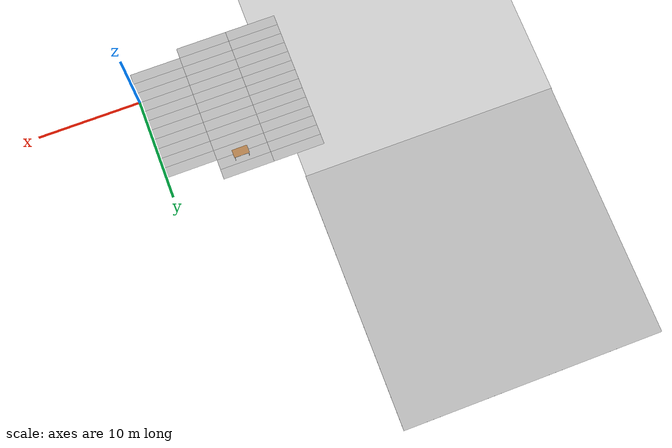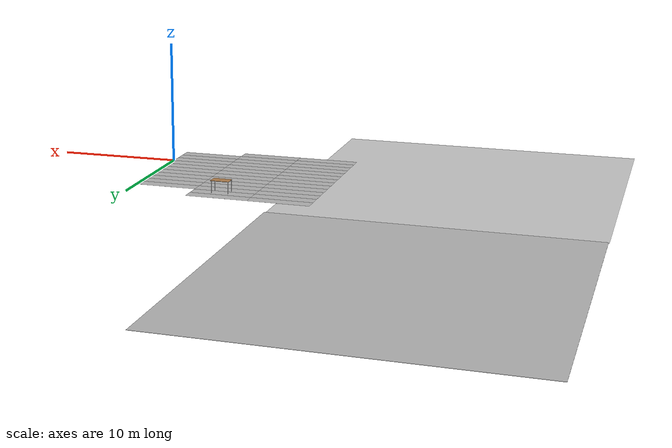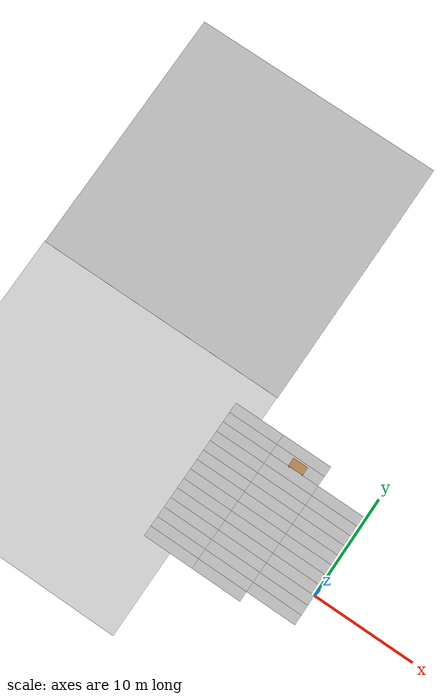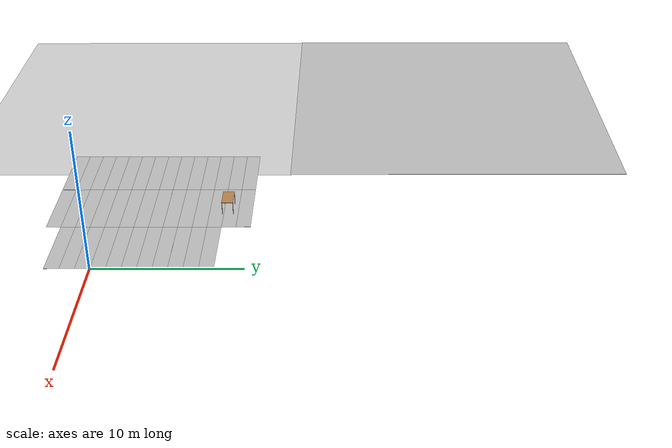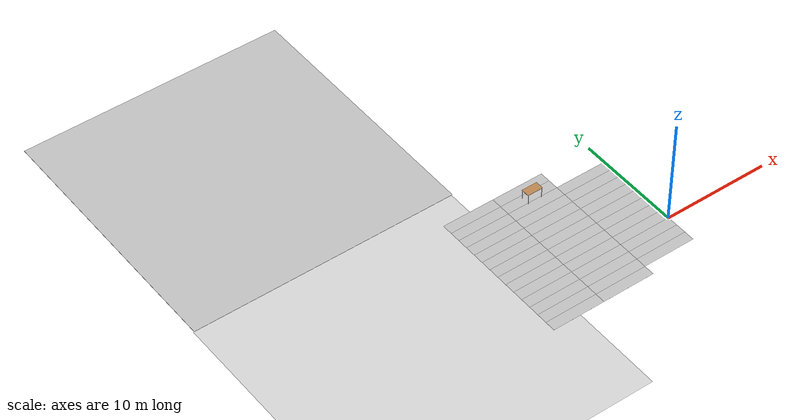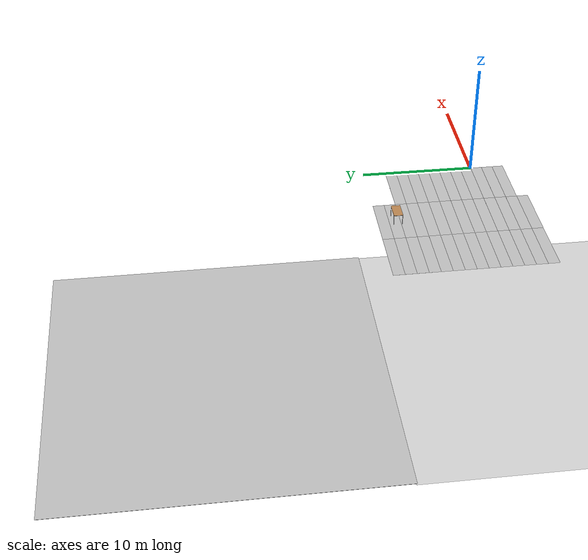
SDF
<sdf version="1.6">
 <world name="default">
  <model name="cmp9767m_ground_3_1">
   <static>1</static>
   <link name="dirt">
    <collision name="collision">
     <geometry><plane><normal>0 0 1</normal><size>25 25</size></plane></geometry>
     <surface><friction><ode><mu>100</mu><mu2>50</mu2></ode></friction></surface>
    </collision>
    <visual name="visual">
     <cast_shadows>0</cast_shadows>
     <geometry><plane><normal>0 0 1</normal><size>25 25</size></plane></geometry>
     <material>
      <script>
       <uri>model://cmp9767m_ground_3/materials/scripts</uri>
       <uri>model://cmp9767m_ground_3/materials/textures</uri>
       <name>cmp9767m_ground_3/dirt</name>
      </script>
     </material>
    </visual>
   </link>
   <pose>-24.7968 -0.006622 0 0 -0 0</pose>
  </model>
  <model name="cmp9767m_ground_3_2">
   <static>1</static>
   <link name="dirt">
    <collision name="collision">
     <geometry><plane><normal>0 0 1</normal><size>25 25</size></plane></geometry>
     <surface><friction><ode><mu>100</mu><mu2>50</mu2></ode></friction></surface>
    </collision>
    <visual name="visual">
     <cast_shadows>0</cast_shadows>
     <geometry><plane><normal>0 0 1</normal><size>25 25</size></plane></geometry>
     <material>
      <script>
       <uri>model://cmp9767m_ground_3/materials/scripts</uri>
       <uri>model://cmp9767m_ground_3/materials/textures</uri>
       <name>cmp9767m_ground_3/dirt</name>
      </script>
     </material>
    </visual>
   </link>
   <pose>-24.7414 24.922 0 0 -0 0</pose>
  </model>
  <model name="crop_rows">
   <static>1</static>
   <link name="crop_rows">
    <pose>0 0 0.025 0 -0 0</pose>
    <collision name="collision">
     <geometry><plane><normal>0 0 1</normal><size>5 1</size></plane></geometry>
     <surface><friction><ode><mu>100</mu><mu2>50</mu2></ode></friction></surface>
    </collision>
    <visual name="visual">
     <cast_shadows>0</cast_shadows>
     <geometry><plane><normal>0 0 1</normal><size>5 1</size></plane></geometry>
     <material>
      <script>
       <uri>model://crop_rows/materials/scripts</uri>
       <uri>model://crop_rows/materials/textures</uri>
       <name>crop_rows/real_texture</name>
      </script>
     </material>
    </visual>
   </link>
   <pose>-2.5 -0.5 0 0 -0 0</pose>
  </model>
  <model name="crop_rows_1">
   <static>1</static>
   <link name="crop_rows">
    <pose>0 0 0.025 0 -0 0</pose>
    <collision name="collision">
     <geometry><plane><normal>0 0 1</normal><size>5 1</size></plane></geometry>
     <surface><friction><ode><mu>100</mu><mu2>50</mu2></ode></friction></surface>
    </collision>
    <visual name="visual">
     <cast_shadows>0</cast_shadows>
     <geometry><plane><normal>0 0 1</normal><size>5 1</size></plane></geometry>
     <material>
      <script>
       <uri>model://crop_rows/materials/scripts</uri>
       <uri>model://crop_rows/materials/textures</uri>
       <name>crop_rows/real_texture</name>
      </script>
     </material>
    </visual>
   </link>
   <pose>-2.5 -1.5 0 0 -0 0</pose>
  </model>
  <model name="crop_rows_3">
   <static>1</static>
   <link name="crop_rows">
    <pose>0 0 0.025 0 -0 0</pose>
    <collision name="collision">
     <geometry><plane><normal>0 0 1</normal><size>5 1</size></plane></geometry>
     <surface><friction><ode><mu>100</mu><mu2>50</mu2></ode></friction></surface>
    </collision>
    <visual name="visual">
     <cast_shadows>0</cast_shadows>
     <geometry><plane><normal>0 0 1</normal><size>5 1</size></plane></geometry>
     <material>
      <script>
       <uri>model://crop_rows/materials/scripts</uri>
       <uri>model://crop_rows/materials/textures</uri>
       <name>crop_rows/real_texture</name>
      </script>
     </material>
    </visual>
   </link>
   <pose>-2.5 -2.5 0 0 -0 0</pose>
  </model>
  <model name="crop_rows_15">
   <static>1</static>
   <link name="crop_rows">
    <pose>0 0 0.025 0 -0 0</pose>
    <collision name="collision">
     <geometry><plane><normal>0 0 1</normal><size>5 1</size></plane></geometry>
     <surface><friction><ode><mu>100</mu><mu2>50</mu2></ode></friction></surface>
    </collision>
    <visual name="visual">
     <cast_shadows>0</cast_shadows>
     <geometry><plane><normal>0 0 1</normal><size>5 1</size></plane></geometry>
     <material>
      <script>
       <uri>model://crop_rows/materials/scripts</uri>
       <uri>model://crop_rows/materials/textures</uri>
       <name>crop_rows/real_texture</name>
      </script>
     </material>
    </visual>
   </link>
   <pose>-2.5 0.5 0 0 -0 0</pose>
  </model>
  <model name="crop_rows_16">
   <static>1</static>
   <link name="crop_rows">
    <pose>0 0 0.025 0 -0 0</pose>
    <collision name="collision">
     <geometry><plane><normal>0 0 1</normal><size>5 1</size></plane></geometry>
     <surface><friction><ode><mu>100</mu><mu2>50</mu2></ode></friction></surface>
    </collision>
    <visual name="visual">
     <cast_shadows>0</cast_shadows>
     <geometry><plane><normal>0 0 1</normal><size>5 1</size></plane></geometry>
     <material>
      <script>
       <uri>model://crop_rows/materials/scripts</uri>
       <uri>model://crop_rows/materials/textures</uri>
       <name>crop_rows/real_texture</name>
      </script>
     </material>
    </visual>
   </link>
   <pose>-2.5 1.5 0 0 -0 0</pose>
  </model>
  <model name="crop_rows_17">
   <static>1</static>
   <link name="crop_rows">
    <pose>0 0 0.025 0 -0 0</pose>
    <collision name="collision">
     <geometry><plane><normal>0 0 1</normal><size>5 1</size></plane></geometry>
     <surface><friction><ode><mu>100</mu><mu2>50</mu2></ode></friction></surface>
    </collision>
    <visual name="visual">
     <cast_shadows>0</cast_shadows>
     <geometry><plane><normal>0 0 1</normal><size>5 1</size></plane></geometry>
     <material>
      <script>
       <uri>model://crop_rows/materials/scripts</uri>
       <uri>model://crop_rows/materials/textures</uri>
       <name>crop_rows/real_texture</name>
      </script>
     </material>
    </visual>
   </link>
   <pose>-2.5 2.5 0 0 -0 0</pose>
  </model>
  <model name="crop_rows_18">
   <static>1</static>
   <link name="crop_rows">
    <pose>0 0 0.025 0 -0 0</pose>
    <collision name="collision">
     <geometry><plane><normal>0 0 1</normal><size>5 1</size></plane></geometry>
     <surface><friction><ode><mu>100</mu><mu2>50</mu2></ode></friction></surface>
    </collision>
    <visual name="visual">
     <cast_shadows>0</cast_shadows>
     <geometry><plane><normal>0 0 1</normal><size>5 1</size></plane></geometry>
     <material>
      <script>
       <uri>model://crop_rows/materials/scripts</uri>
       <uri>model://crop_rows/materials/textures</uri>
       <name>crop_rows/real_texture</name>
      </script>
     </material>
    </visual>
   </link>
   <pose>-2.5 3.5 0 0 -0 0</pose>
  </model>
  <model name="crop_rows_29">
   <static>1</static>
   <link name="crop_rows">
    <pose>0 0 0.025 0 -0 0</pose>
    <collision name="collision">
     <geometry><plane><normal>0 0 1</normal><size>5 1</size></plane></geometry>
     <surface><friction><ode><mu>100</mu><mu2>50</mu2></ode></friction></surface>
    </collision>
    <visual name="visual">
     <cast_shadows>0</cast_shadows>
     <geometry><plane><normal>0 0 1</normal><size>5 1</size></plane></geometry>
     <material>
      <script>
       <uri>model://crop_rows/materials/scripts</uri>
       <uri>model://crop_rows/materials/textures</uri>
       <name>crop_rows/real_texture</name>
      </script>
     </material>
    </visual>
   </link>
   <pose>-2.5 4.5 0 0 -0 0</pose>
  </model>
  <model name="crop_rows_32">
   <static>1</static>
   <link name="crop_rows">
    <pose>0 0 0.025 0 -0 0</pose>
    <collision name="collision">
     <geometry><plane><normal>0 0 1</normal><size>5 1</size></plane></geometry>
     <surface><friction><ode><mu>100</mu><mu2>50</mu2></ode></friction></surface>
    </collision>
    <visual name="visual">
     <cast_shadows>0</cast_shadows>
     <geometry><plane><normal>0 0 1</normal><size>5 1</size></plane></geometry>
     <material>
      <script>
       <uri>model://crop_rows/materials/scripts</uri>
       <uri>model://crop_rows/materials/textures</uri>
       <name>crop_rows/real_texture</name>
      </script>
     </material>
    </visual>
   </link>
   <pose>-2.5 5.5 0 0 -0 0</pose>
  </model>
  <model name="crop_rows_35">
   <static>1</static>
   <link name="crop_rows">
    <pose>0 0 0.025 0 -0 0</pose>
    <collision name="collision">
     <geometry><plane><normal>0 0 1</normal><size>5 1</size></plane></geometry>
     <surface><friction><ode><mu>100</mu><mu2>50</mu2></ode></friction></surface>
    </collision>
    <visual name="visual">
     <cast_shadows>0</cast_shadows>
     <geometry><plane><normal>0 0 1</normal><size>5 1</size></plane></geometry>
     <material>
      <script>
       <uri>model://crop_rows/materials/scripts</uri>
       <uri>model://crop_rows/materials/textures</uri>
       <name>crop_rows/real_texture</name>
      </script>
     </material>
    </visual>
   </link>
   <pose>-2.5 6.5 0 0 -0 0</pose>
  </model>
  <model name="crop_rows_41">
   <static>1</static>
   <link name="crop_rows">
    <pose>0 0 0.025 0 -0 0</pose>
    <collision name="collision">
     <geometry><plane><normal>0 0 1</normal><size>5 1</size></plane></geometry>
     <surface><friction><ode><mu>100</mu><mu2>50</mu2></ode></friction></surface>
    </collision>
    <visual name="visual">
     <cast_shadows>0</cast_shadows>
     <geometry><plane><normal>0 0 1</normal><size>5 1</size></plane></geometry>
     <material>
      <script>
       <uri>model://crop_rows/materials/scripts</uri>
       <uri>model://crop_rows/materials/textures</uri>
       <name>crop_rows/real_texture</name>
      </script>
     </material>
    </visual>
   </link>
   <pose>-2.5 7.5 0 0 -0 0</pose>
  </model>
  <model name="crop_rows_77">
   <static>1</static>
   <link name="crop_rows">
    <pose>0 0 0.025 0 -0 0</pose>
    <collision name="collision">
     <geometry><plane><normal>0 0 1</normal><size>5 1</size></plane></geometry>
     <surface><friction><ode><mu>100</mu><mu2>50</mu2></ode></friction></surface>
    </collision>
    <visual name="visual">
     <cast_shadows>0</cast_shadows>
     <geometry><plane><normal>0 0 1</normal><size>5 1</size></plane></geometry>
     <material>
      <script>
       <uri>model://crop_rows/materials/scripts</uri>
       <uri>model://crop_rows/materials/textures</uri>
       <name>crop_rows/real_texture</name>
      </script>
     </material>
    </visual>
   </link>
   <pose>-7.5 -3.5 0 0 -0 0</pose>
  </model>
  <model name="crop_rows_78">
   <static>1</static>
   <link name="crop_rows">
    <pose>0 0 0.025 0 -0 0</pose>
    <collision name="collision">
     <geometry><plane><normal>0 0 1</normal><size>5 1</size></plane></geometry>
     <surface><friction><ode><mu>100</mu><mu2>50</mu2></ode></friction></surface>
    </collision>
    <visual name="visual">
     <cast_shadows>0</cast_shadows>
     <geometry><plane><normal>0 0 1</normal><size>5 1</size></plane></geometry>
     <material>
      <script>
       <uri>model://crop_rows/materials/scripts</uri>
       <uri>model://crop_rows/materials/textures</uri>
       <name>crop_rows/real_texture</name>
      </script>
     </material>
    </visual>
   </link>
   <pose>-7.5 -2.5 0 0 -0 0</pose>
  </model>
  <model name="crop_rows_79">
   <static>1</static>
   <link name="crop_rows">
    <pose>0 0 0.025 0 -0 0</pose>
    <collision name="collision">
     <geometry><plane><normal>0 0 1</normal><size>5 1</size></plane></geometry>
     <surface><friction><ode><mu>100</mu><mu2>50</mu2></ode></friction></surface>
    </collision>
    <visual name="visual">
     <cast_shadows>0</cast_shadows>
     <geometry><plane><normal>0 0 1</normal><size>5 1</size></plane></geometry>
     <material>
      <script>
       <uri>model://crop_rows/materials/scripts</uri>
       <uri>model://crop_rows/materials/textures</uri>
       <name>crop_rows/real_texture</name>
      </script>
     </material>
    </visual>
   </link>
   <pose>-7.5 -1.5 0 0 -0 0</pose>
  </model>
  <model name="crop_rows_80">
   <static>1</static>
   <link name="crop_rows">
    <pose>0 0 0.025 0 -0 0</pose>
    <collision name="collision">
     <geometry><plane><normal>0 0 1</normal><size>5 1</size></plane></geometry>
     <surface><friction><ode><mu>100</mu><mu2>50</mu2></ode></friction></surface>
    </collision>
    <visual name="visual">
     <cast_shadows>0</cast_shadows>
     <geometry><plane><normal>0 0 1</normal><size>5 1</size></plane></geometry>
     <material>
      <script>
       <uri>model://crop_rows/materials/scripts</uri>
       <uri>model://crop_rows/materials/textures</uri>
       <name>crop_rows/real_texture</name>
      </script>
     </material>
    </visual>
   </link>
   <pose>-7.5 -0.5 0 0 -0 0</pose>
  </model>
  <model name="crop_rows_81">
   <static>1</static>
   <link name="crop_rows">
    <pose>0 0 0.025 0 -0 0</pose>
    <collision name="collision">
     <geometry><plane><normal>0 0 1</normal><size>5 1</size></plane></geometry>
     <surface><friction><ode><mu>100</mu><mu2>50</mu2></ode></friction></surface>
    </collision>
    <visual name="visual">
     <cast_shadows>0</cast_shadows>
     <geometry><plane><normal>0 0 1</normal><size>5 1</size></plane></geometry>
     <material>
      <script>
       <uri>model://crop_rows/materials/scripts</uri>
       <uri>model://crop_rows/materials/textures</uri>
       <name>crop_rows/real_texture</name>
      </script>
     </material>
    </visual>
   </link>
   <pose>-7.5 0.5 0 0 -0 0</pose>
  </model>
  <model name="crop_rows_82">
   <static>1</static>
   <link name="crop_rows">
    <pose>0 0 0.025 0 -0 0</pose>
    <collision name="collision">
     <geometry><plane><normal>0 0 1</normal><size>5 1</size></plane></geometry>
     <surface><friction><ode><mu>100</mu><mu2>50</mu2></ode></friction></surface>
    </collision>
    <visual name="visual">
     <cast_shadows>0</cast_shadows>
     <geometry><plane><normal>0 0 1</normal><size>5 1</size></plane></geometry>
     <material>
      <script>
       <uri>model://crop_rows/materials/scripts</uri>
       <uri>model://crop_rows/materials/textures</uri>
       <name>crop_rows/real_texture</name>
      </script>
     </material>
    </visual>
   </link>
   <pose>-7.5 1.5 0 0 -0 0</pose>
  </model>
  <model name="crop_rows_83">
   <static>1</static>
   <link name="crop_rows">
    <pose>0 0 0.025 0 -0 0</pose>
    <collision name="collision">
     <geometry><plane><normal>0 0 1</normal><size>5 1</size></plane></geometry>
     <surface><friction><ode><mu>100</mu><mu2>50</mu2></ode></friction></surface>
    </collision>
    <visual name="visual">
     <cast_shadows>0</cast_shadows>
     <geometry><plane><normal>0 0 1</normal><size>5 1</size></plane></geometry>
     <material>
      <script>
       <uri>model://crop_rows/materials/scripts</uri>
       <uri>model://crop_rows/materials/textures</uri>
       <name>crop_rows/real_texture</name>
      </script>
     </material>
    </visual>
   </link>
   <pose>-7.5 2.5 0 0 -0 0</pose>
  </model>
  <model name="crop_rows_84">
   <static>1</static>
   <link name="crop_rows">
    <pose>0 0 0.025 0 -0 0</pose>
    <collision name="collision">
     <geometry><plane><normal>0 0 1</normal><size>5 1</size></plane></geometry>
     <surface><friction><ode><mu>100</mu><mu2>50</mu2></ode></friction></surface>
    </collision>
    <visual name="visual">
     <cast_shadows>0</cast_shadows>
     <geometry><plane><normal>0 0 1</normal><size>5 1</size></plane></geometry>
     <material>
      <script>
       <uri>model://crop_rows/materials/scripts</uri>
       <uri>model://crop_rows/materials/textures</uri>
       <name>crop_rows/real_texture</name>
      </script>
     </material>
    </visual>
   </link>
   <pose>-7.5 3.5 0 0 -0 0</pose>
  </model>
  <model name="crop_rows_85">
   <static>1</static>
   <link name="crop_rows">
    <pose>0 0 0.025 0 -0 0</pose>
    <collision name="collision">
     <geometry><plane><normal>0 0 1</normal><size>5 1</size></plane></geometry>
     <surface><friction><ode><mu>100</mu><mu2>50</mu2></ode></friction></surface>
    </collision>
    <visual name="visual">
     <cast_shadows>0</cast_shadows>
     <geometry><plane><normal>0 0 1</normal><size>5 1</size></plane></geometry>
     <material>
      <script>
       <uri>model://crop_rows/materials/scripts</uri>
       <uri>model://crop_rows/materials/textures</uri>
       <name>crop_rows/real_texture</name>
      </script>
     </material>
    </visual>
   </link>
   <pose>-7.5 4.5 0 0 -0 0</pose>
  </model>
  <model name="crop_rows_86">
   <static>1</static>
   <link name="crop_rows">
    <pose>0 0 0.025 0 -0 0</pose>
    <collision name="collision">
     <geometry><plane><normal>0 0 1</normal><size>5 1</size></plane></geometry>
     <surface><friction><ode><mu>100</mu><mu2>50</mu2></ode></friction></surface>
    </collision>
    <visual name="visual">
     <cast_shadows>0</cast_shadows>
     <geometry><plane><normal>0 0 1</normal><size>5 1</size></plane></geometry>
     <material>
      <script>
       <uri>model://crop_rows/materials/scripts</uri>
       <uri>model://crop_rows/materials/textures</uri>
       <name>crop_rows/real_texture</name>
      </script>
     </material>
    </visual>
   </link>
   <pose>-7.5 5.5 0 0 -0 0</pose>
  </model>
  <model name="crop_rows_87">
   <static>1</static>
   <link name="crop_rows">
    <pose>0 0 0.025 0 -0 0</pose>
    <collision name="collision">
     <geometry><plane><normal>0 0 1</normal><size>5 1</size></plane></geometry>
     <surface><friction><ode><mu>100</mu><mu2>50</mu2></ode></friction></surface>
    </collision>
    <visual name="visual">
     <cast_shadows>0</cast_shadows>
     <geometry><plane><normal>0 0 1</normal><size>5 1</size></plane></geometry>
     <material>
      <script>
       <uri>model://crop_rows/materials/scripts</uri>
       <uri>model://crop_rows/materials/textures</uri>
       <name>crop_rows/real_texture</name>
      </script>
     </material>
    </visual>
   </link>
   <pose>-7.5 6.5 0 0 -0 0</pose>
  </model>
  <model name="crop_rows_88">
   <static>1</static>
   <link name="crop_rows">
    <pose>0 0 0.025 0 -0 0</pose>
    <collision name="collision">
     <geometry><plane><normal>0 0 1</normal><size>5 1</size></plane></geometry>
     <surface><friction><ode><mu>100</mu><mu2>50</mu2></ode></friction></surface>
    </collision>
    <visual name="visual">
     <cast_shadows>0</cast_shadows>
     <geometry><plane><normal>0 0 1</normal><size>5 1</size></plane></geometry>
     <material>
      <script>
       <uri>model://crop_rows/materials/scripts</uri>
       <uri>model://crop_rows/materials/textures</uri>
       <name>crop_rows/real_texture</name>
      </script>
     </material>
    </visual>
   </link>
   <pose>-7.5 7.5 0 0 -0 0</pose>
  </model>
  <model name="crop_rows_93">
   <static>1</static>
   <link name="crop_rows">
    <pose>0 0 0.025 0 -0 0</pose>
    <collision name="collision">
     <geometry><plane><normal>0 0 1</normal><size>5 1</size></plane></geometry>
     <surface><friction><ode><mu>100</mu><mu2>50</mu2></ode></friction></surface>
    </collision>
    <visual name="visual">
     <cast_shadows>0</cast_shadows>
     <geometry><plane><normal>0 0 1</normal><size>5 1</size></plane></geometry>
     <material>
      <script>
       <uri>model://crop_rows/materials/scripts</uri>
       <uri>model://crop_rows/materials/textures</uri>
       <name>crop_rows/real_texture</name>
      </script>
     </material>
    </visual>
   </link>
   <pose>-7.5 8.5 0 0 -0 0</pose>
  </model>
  <model name="crop_rows_94">
   <static>1</static>
   <link name="crop_rows">
    <pose>0 0 0.025 0 -0 0</pose>
    <collision name="collision">
     <geometry><plane><normal>0 0 1</normal><size>5 1</size></plane></geometry>
     <surface><friction><ode><mu>100</mu><mu2>50</mu2></ode></friction></surface>
    </collision>
    <visual name="visual">
     <cast_shadows>0</cast_shadows>
     <geometry><plane><normal>0 0 1</normal><size>5 1</size></plane></geometry>
     <material>
      <script>
       <uri>model://crop_rows/materials/scripts</uri>
       <uri>model://crop_rows/materials/textures</uri>
       <name>crop_rows/real_texture</name>
      </script>
     </material>
    </visual>
   </link>
   <pose>-7.5 9.5 0 0 -0 0</pose>
  </model>
  <model name="crop_rows_99">
   <static>1</static>
   <link name="crop_rows">
    <pose>0 0 0.025 0 -0 0</pose>
    <collision name="collision">
     <geometry><plane><normal>0 0 1</normal><size>5 1</size></plane></geometry>
     <surface><friction><ode><mu>100</mu><mu2>50</mu2></ode></friction></surface>
    </collision>
    <visual name="visual">
     <cast_shadows>0</cast_shadows>
     <geometry><plane><normal>0 0 1</normal><size>5 1</size></plane></geometry>
     <material>
      <script>
       <uri>model://crop_rows/materials/scripts</uri>
       <uri>model://crop_rows/materials/textures</uri>
       <name>crop_rows/real_texture</name>
      </script>
     </material>
    </visual>
   </link>
   <pose>-12.5 9.5 0 0 -0 0</pose>
  </model>
  <model name="crop_rows_100">
   <static>1</static>
   <link name="crop_rows">
    <pose>0 0 0.025 0 -0 0</pose>
    <collision name="collision">
     <geometry><plane><normal>0 0 1</normal><size>5 1</size></plane></geometry>
     <surface><friction><ode><mu>100</mu><mu2>50</mu2></ode></friction></surface>
    </collision>
    <visual name="visual">
     <cast_shadows>0</cast_shadows>
     <geometry><plane><normal>0 0 1</normal><size>5 1</size></plane></geometry>
     <material>
      <script>
       <uri>model://crop_rows/materials/scripts</uri>
       <uri>model://crop_rows/materials/textures</uri>
       <name>crop_rows/real_texture</name>
      </script>
     </material>
    </visual>
   </link>
   <pose>-12.5 8.5 0 0 -0 0</pose>
  </model>
  <model name="crop_rows_101">
   <static>1</static>
   <link name="crop_rows">
    <pose>0 0 0.025 0 -0 0</pose>
    <collision name="collision">
     <geometry><plane><normal>0 0 1</normal><size>5 1</size></plane></geometry>
     <surface><friction><ode><mu>100</mu><mu2>50</mu2></ode></friction></surface>
    </collision>
    <visual name="visual">
     <cast_shadows>0</cast_shadows>
     <geometry><plane><normal>0 0 1</normal><size>5 1</size></plane></geometry>
     <material>
      <script>
       <uri>model://crop_rows/materials/scripts</uri>
       <uri>model://crop_rows/materials/textures</uri>
       <name>crop_rows/real_texture</name>
      </script>
     </material>
    </visual>
   </link>
   <pose>-12.5 7.5 0 0 -0 0</pose>
  </model>
  <model name="crop_rows_102">
   <static>1</static>
   <link name="crop_rows">
    <pose>0 0 0.025 0 -0 0</pose>
    <collision name="collision">
     <geometry><plane><normal>0 0 1</normal><size>5 1</size></plane></geometry>
     <surface><friction><ode><mu>100</mu><mu2>50</mu2></ode></friction></surface>
    </collision>
    <visual name="visual">
     <cast_shadows>0</cast_shadows>
     <geometry><plane><normal>0 0 1</normal><size>5 1</size></plane></geometry>
     <material>
      <script>
       <uri>model://crop_rows/materials/scripts</uri>
       <uri>model://crop_rows/materials/textures</uri>
       <name>crop_rows/real_texture</name>
      </script>
     </material>
    </visual>
   </link>
   <pose>-12.5 6.5 0 0 -0 0</pose>
  </model>
  <model name="crop_rows_103">
   <static>1</static>
   <link name="crop_rows">
    <pose>0 0 0.025 0 -0 0</pose>
    <collision name="collision">
     <geometry><plane><normal>0 0 1</normal><size>5 1</size></plane></geometry>
     <surface><friction><ode><mu>100</mu><mu2>50</mu2></ode></friction></surface>
    </collision>
    <visual name="visual">
     <cast_shadows>0</cast_shadows>
     <geometry><plane><normal>0 0 1</normal><size>5 1</size></plane></geometry>
     <material>
      <script>
       <uri>model://crop_rows/materials/scripts</uri>
       <uri>model://crop_rows/materials/textures</uri>
       <name>crop_rows/real_texture</name>
      </script>
     </material>
    </visual>
   </link>
   <pose>-12.5 5.5 0 0 -0 0</pose>
  </model>
  <model name="crop_rows_104">
   <static>1</static>
   <link name="crop_rows">
    <pose>0 0 0.025 0 -0 0</pose>
    <collision name="collision">
     <geometry><plane><normal>0 0 1</normal><size>5 1</size></plane></geometry>
     <surface><friction><ode><mu>100</mu><mu2>50</mu2></ode></friction></surface>
    </collision>
    <visual name="visual">
     <cast_shadows>0</cast_shadows>
     <geometry><plane><normal>0 0 1</normal><size>5 1</size></plane></geometry>
     <material>
      <script>
       <uri>model://crop_rows/materials/scripts</uri>
       <uri>model://crop_rows/materials/textures</uri>
       <name>crop_rows/real_texture</name>
      </script>
     </material>
    </visual>
   </link>
   <pose>-12.5 4.5 0 0 -0 0</pose>
  </model>
  <model name="crop_rows_105">
   <static>1</static>
   <link name="crop_rows">
    <pose>0 0 0.025 0 -0 0</pose>
    <collision name="collision">
     <geometry><plane><normal>0 0 1</normal><size>5 1</size></plane></geometry>
     <surface><friction><ode><mu>100</mu><mu2>50</mu2></ode></friction></surface>
    </collision>
    <visual name="visual">
     <cast_shadows>0</cast_shadows>
     <geometry><plane><normal>0 0 1</normal><size>5 1</size></plane></geometry>
     <material>
      <script>
       <uri>model://crop_rows/materials/scripts</uri>
       <uri>model://crop_rows/materials/textures</uri>
       <name>crop_rows/real_texture</name>
      </script>
     </material>
    </visual>
   </link>
   <pose>-12.5 3.5 0 0 -0 0</pose>
  </model>
  <model name="crop_rows_106">
   <static>1</static>
   <link name="crop_rows">
    <pose>0 0 0.025 0 -0 0</pose>
    <collision name="collision">
     <geometry><plane><normal>0 0 1</normal><size>5 1</size></plane></geometry>
     <surface><friction><ode><mu>100</mu><mu2>50</mu2></ode></friction></surface>
    </collision>
    <visual name="visual">
     <cast_shadows>0</cast_shadows>
     <geometry><plane><normal>0 0 1</normal><size>5 1</size></plane></geometry>
     <material>
      <script>
       <uri>model://crop_rows/materials/scripts</uri>
       <uri>model://crop_rows/materials/textures</uri>
       <name>crop_rows/real_texture</name>
      </script>
     </material>
    </visual>
   </link>
   <pose>-12.5 2.5 0 0 -0 0</pose>
  </model>
  <model name="crop_rows_107">
   <static>1</static>
   <link name="crop_rows">
    <pose>0 0 0.025 0 -0 0</pose>
    <collision name="collision">
     <geometry><plane><normal>0 0 1</normal><size>5 1</size></plane></geometry>
     <surface><friction><ode><mu>100</mu><mu2>50</mu2></ode></friction></surface>
    </collision>
    <visual name="visual">
     <cast_shadows>0</cast_shadows>
     <geometry><plane><normal>0 0 1</normal><size>5 1</size></plane></geometry>
     <material>
      <script>
       <uri>model://crop_rows/materials/scripts</uri>
       <uri>model://crop_rows/materials/textures</uri>
       <name>crop_rows/real_texture</name>
      </script>
     </material>
    </visual>
   </link>
   <pose>-12.5 1.5 0 0 -0 0</pose>
  </model>
  <model name="crop_rows_108">
   <static>1</static>
   <link name="crop_rows">
    <pose>0 0 0.025 0 -0 0</pose>
    <collision name="collision">
     <geometry><plane><normal>0 0 1</normal><size>5 1</size></plane></geometry>
     <surface><friction><ode><mu>100</mu><mu2>50</mu2></ode></friction></surface>
    </collision>
    <visual name="visual">
     <cast_shadows>0</cast_shadows>
     <geometry><plane><normal>0 0 1</normal><size>5 1</size></plane></geometry>
     <material>
      <script>
       <uri>model://crop_rows/materials/scripts</uri>
       <uri>model://crop_rows/materials/textures</uri>
       <name>crop_rows/real_texture</name>
      </script>
     </material>
    </visual>
   </link>
   <pose>-12.5 0.5 0 0 -0 0</pose>
  </model>
  <model name="crop_rows_109">
   <static>1</static>
   <link name="crop_rows">
    <pose>0 0 0.025 0 -0 0</pose>
    <collision name="collision">
     <geometry><plane><normal>0 0 1</normal><size>5 1</size></plane></geometry>
     <surface><friction><ode><mu>100</mu><mu2>50</mu2></ode></friction></surface>
    </collision>
    <visual name="visual">
     <cast_shadows>0</cast_shadows>
     <geometry><plane><normal>0 0 1</normal><size>5 1</size></plane></geometry>
     <material>
      <script>
       <uri>model://crop_rows/materials/scripts</uri>
       <uri>model://crop_rows/materials/textures</uri>
       <name>crop_rows/real_texture</name>
      </script>
     </material>
    </visual>
   </link>
   <pose>-12.5 -0.5 0 0 -0 0</pose>
  </model>
  <model name="crop_rows_110">
   <static>1</static>
   <link name="crop_rows">
    <pose>0 0 0.025 0 -0 0</pose>
    <collision name="collision">
     <geometry><plane><normal>0 0 1</normal><size>5 1</size></plane></geometry>
     <surface><friction><ode><mu>100</mu><mu2>50</mu2></ode></friction></surface>
    </collision>
    <visual name="visual">
     <cast_shadows>0</cast_shadows>
     <geometry><plane><normal>0 0 1</normal><size>5 1</size></plane></geometry>
     <material>
      <script>
       <uri>model://crop_rows/materials/scripts</uri>
       <uri>model://crop_rows/materials/textures</uri>
       <name>crop_rows/real_texture</name>
      </script>
     </material>
    </visual>
   </link>
   <pose>-12.5 -1.5 0 0 -0 0</pose>
  </model>
  <model name="crop_rows_111">
   <static>1</static>
   <link name="crop_rows">
    <pose>0 0 0.025 0 -0 0</pose>
    <collision name="collision">
     <geometry><plane><normal>0 0 1</normal><size>5 1</size></plane></geometry>
     <surface><friction><ode><mu>100</mu><mu2>50</mu2></ode></friction></surface>
    </collision>
    <visual name="visual">
     <cast_shadows>0</cast_shadows>
     <geometry><plane><normal>0 0 1</normal><size>5 1</size></plane></geometry>
     <material>
      <script>
       <uri>model://crop_rows/materials/scripts</uri>
       <uri>model://crop_rows/materials/textures</uri>
       <name>crop_rows/real_texture</name>
      </script>
     </material>
    </visual>
   </link>
   <pose>-12.5 -2.5 0 0 -0 0</pose>
  </model>
  <model name="crop_rows_112">
   <static>1</static>
   <link name="crop_rows">
    <pose>0 0 0.025 0 -0 0</pose>
    <collision name="collision">
     <geometry><plane><normal>0 0 1</normal><size>5 1</size></plane></geometry>
     <surface><friction><ode><mu>100</mu><mu2>50</mu2></ode></friction></surface>
    </collision>
    <visual name="visual">
     <cast_shadows>0</cast_shadows>
     <geometry><plane><normal>0 0 1</normal><size>5 1</size></plane></geometry>
     <material>
      <script>
       <uri>model://crop_rows/materials/scripts</uri>
       <uri>model://crop_rows/materials/textures</uri>
       <name>crop_rows/real_texture</name>
      </script>
     </material>
    </visual>
   </link>
   <pose>-12.5029 -3.5 0 0 -0 0</pose>
  </model>
  <model name="table">
   <static>1</static>
   <link name="link">
    <collision name="surface">
     <pose>0 0 1 0 -0 0</pose>
     <geometry><box><size>1.5 0.8 0.03</size></box></geometry>
     <surface><friction><ode><mu>0.6</mu><mu2>0.6</mu2></ode></friction></surface>
    </collision>
    <visual name="visual1">
     <pose>0 0 1 0 -0 0</pose>
     <geometry><box><size>1.5 0.8 0.03</size></box></geometry>
     <material>
      <script><uri>file://media/materials/scripts/gazebo.material</uri><name>Gazebo/Wood</name></script>
     </material>
    </visual>
    <collision name="front_left_leg">
     <pose>0.68 0.38 0.5 0 -0 0</pose>
     <geometry><cylinder><radius>0.02</radius><length>1</length></cylinder></geometry>
    </collision>
    <visual name="front_left_leg">
     <pose>0.68 0.38 0.5 0 -0 0</pose>
     <geometry><cylinder><radius>0.02</radius><length>1</length></cylinder></geometry>
     <material>
      <script><uri>file://media/materials/scripts/gazebo.material</uri><name>Gazebo/Grey</name></script>
     </material>
    </visual>
    <collision name="front_right_leg">
     <pose>0.68 -0.38 0.5 0 -0 0</pose>
     <geometry><cylinder><radius>0.02</radius><length>1</length></cylinder></geometry>
    </collision>
    <visual name="front_right_leg">
     <pose>0.68 -0.38 0.5 0 -0 0</pose>
     <geometry><cylinder><radius>0.02</radius><length>1</length></cylinder></geometry>
     <material>
      <script><uri>file://media/materials/scripts/gazebo.material</uri><name>Gazebo/Grey</name></script>
     </material>
    </visual>
    <collision name="back_right_leg">
     <pose>-0.68 -0.38 0.5 0 -0 0</pose>
     <geometry><cylinder><radius>0.02</radius><length>1</length></cylinder></geometry>
    </collision>
    <visual name="back_right_leg">
     <pose>-0.68 -0.38 0.5 0 -0 0</pose>
     <geometry><cylinder><radius>0.02</radius><length>1</length></cylinder></geometry>
     <material>
      <script><uri>file://media/materials/scripts/gazebo.material</uri><name>Gazebo/Grey</name></script>
     </material>
    </visual>
    <collision name="back_left_leg">
     <pose>-0.68 0.38 0.5 0 -0 0</pose>
     <geometry><cylinder><radius>0.02</radius><length>1</length></cylinder></geometry>
    </collision>
    <visual name="back_left_leg">
     <pose>-0.68 0.38 0.5 0 -0 0</pose>
     <geometry><cylinder><radius>0.02</radius><length>1</length></cylinder></geometry>
     <material>
      <script><uri>file://media/materials/scripts/gazebo.material</uri><name>Gazebo/Grey</name></script>
     </material>
    </visual>
   </link>
   <pose>-7.33816 8.3006 0 0 -0 0</pose>
  </model>
 </world>
</sdf>
